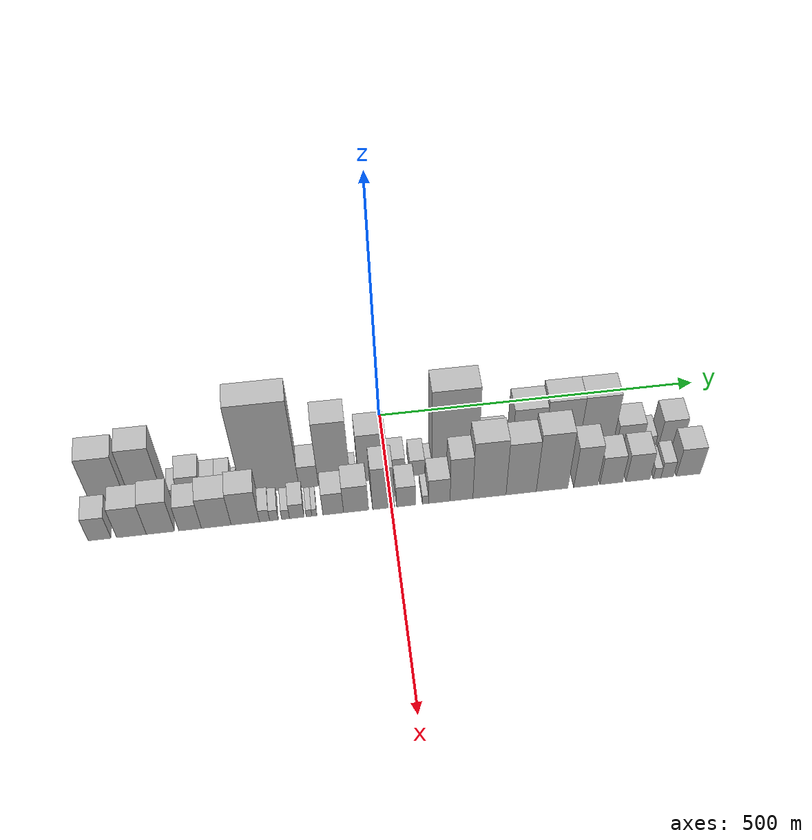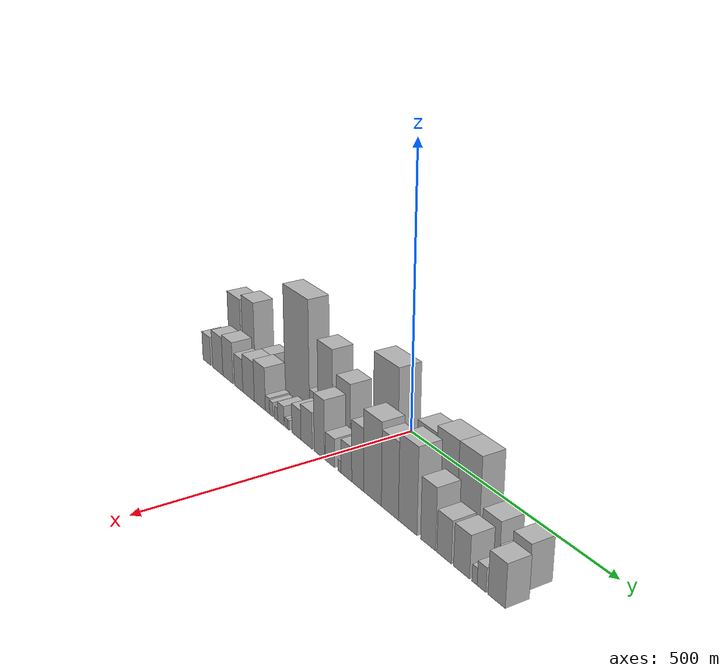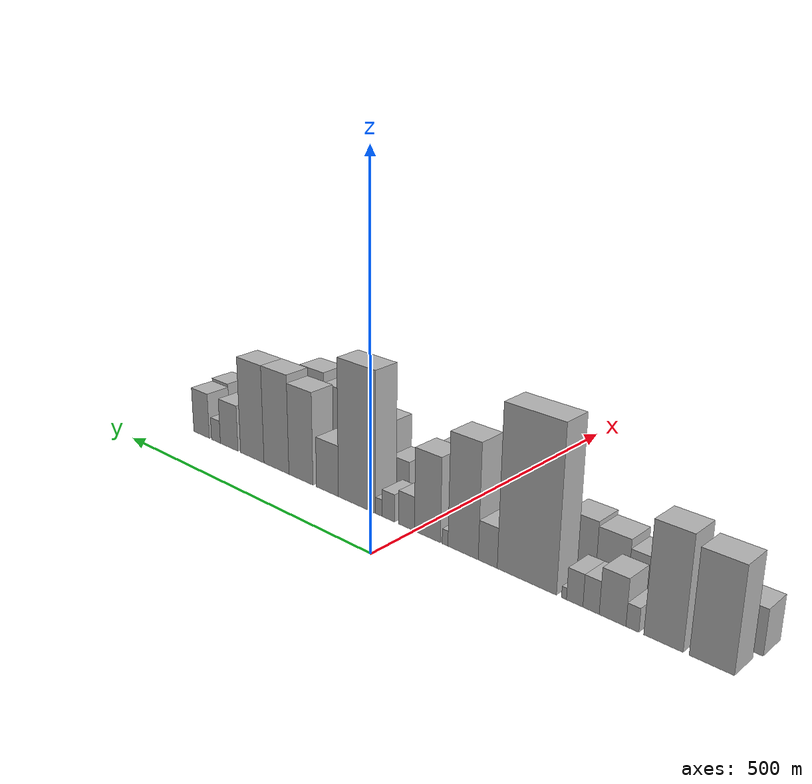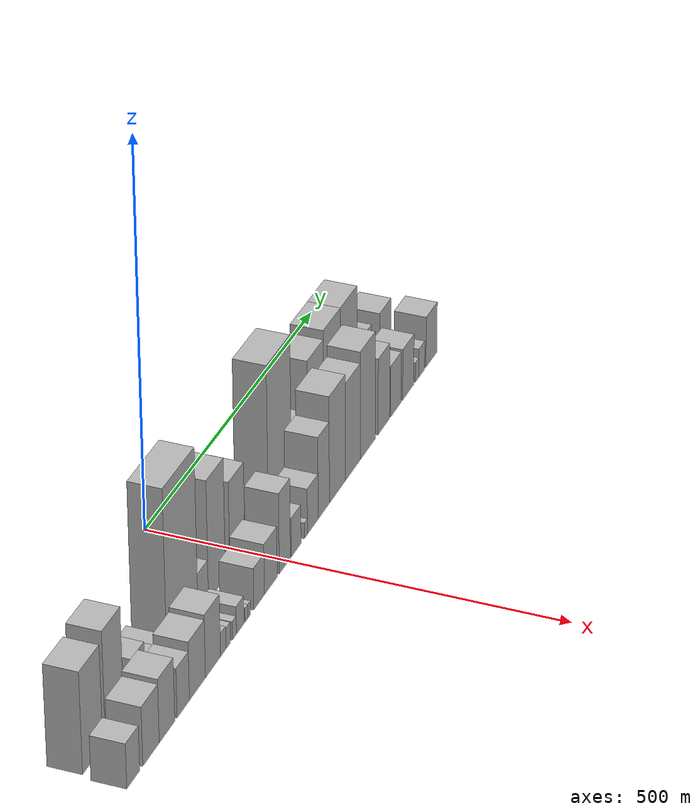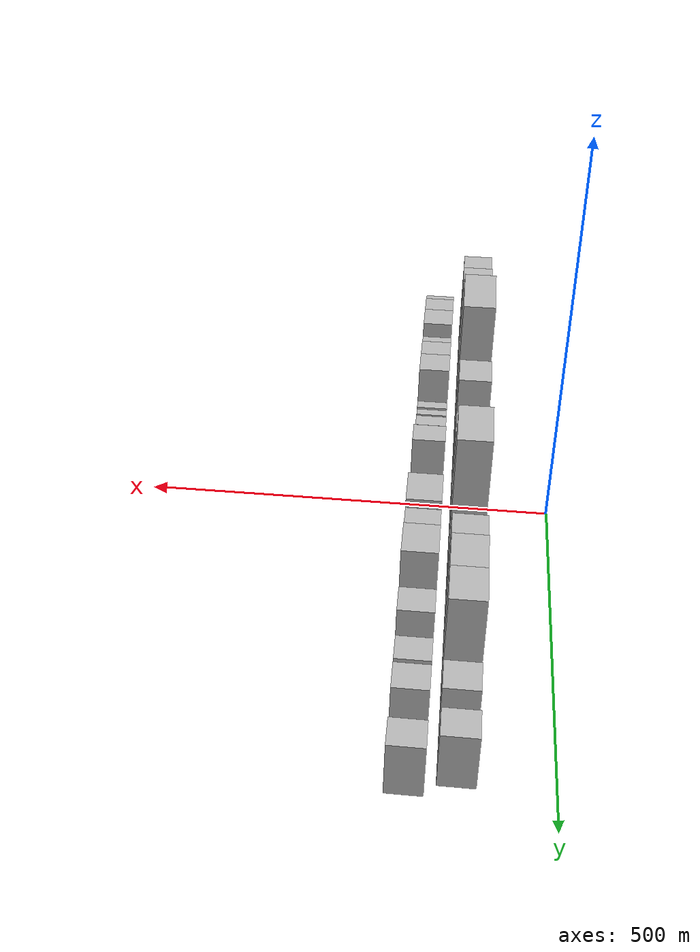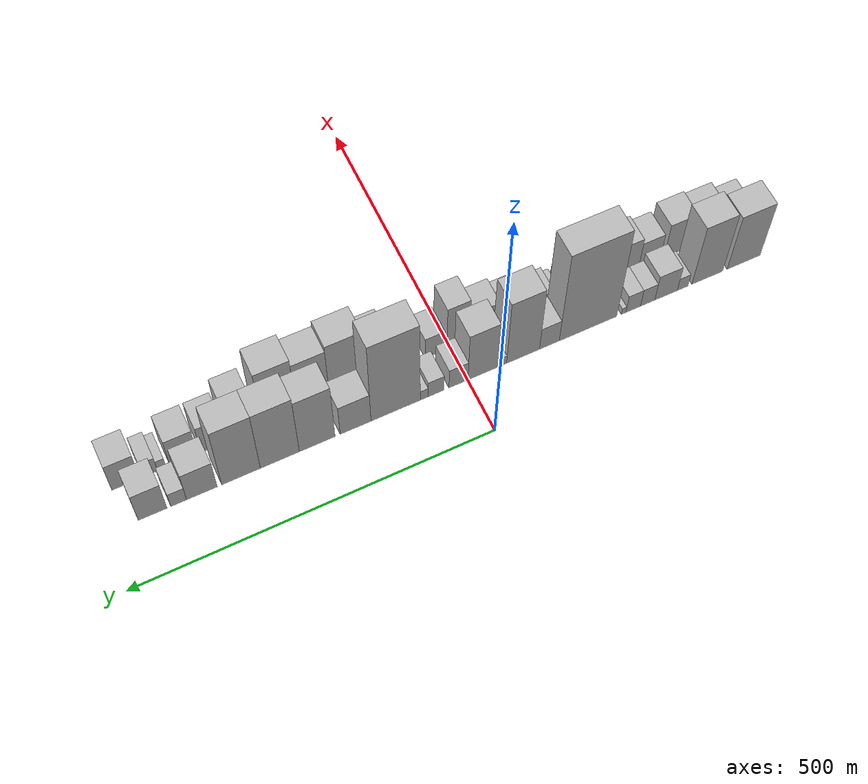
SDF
<sdf version="1.6">
 <world name="default">
  <scene>
   <sky><clouds><speed>12</speed></clouds></sky>
   <ambient>0.4 0.4 0.4 1</ambient>
   <background>0.7 0.7 0.7 1</background>
   <shadows>1</shadows>
  </scene>
  <gravity>0 0 -9.8066</gravity>
  <magnetic_field>6e-06 2.3e-05 -4.2e-05</magnetic_field>
  <physics default="0" name="default_physics" type="ode">
   <ode>
    <solver>
     <type>quick</type>
     <iters>10</iters>
     <sor>1.0</sor>
     <use_dynamic_moi_rescaling>0</use_dynamic_moi_rescaling>
    </solver>
    <constraints>
     <cfm>0</cfm>
     <erp>0.2</erp>
     <contact_max_correcting_vel>100</contact_max_correcting_vel>
     <contact_surface_layer>0.001</contact_surface_layer>
    </constraints>
   </ode>
   <max_step_size>0.004</max_step_size>
   <real_time_factor>1</real_time_factor>
   <real_time_update_rate>250</real_time_update_rate>
  </physics>
  <light name="sun" type="directional">
   <pose>0 0 10 0 0 0</pose>
   <diffuse>0.8 0.8 0.8 1</diffuse>
   <specular>0.2 0.2 0.2 1</specular>
   <attenuation>
    <range>1000</range>
    <constant>0.9</constant>
    <linear>0.01</linear>
    <quadratic>0.001</quadratic>
   </attenuation>
   <direction>-0.5 0.1 -0.9</direction>
  </light>
  <model name="building_1">
   <static>1</static>
   <pose>100.0000 -412.4454 0 0.000000 0.000000 0.000000</pose>
   <link name="link">
    <pose>0 0 64.50 0 0 0</pose>
    <collision name="collision"><geometry><box><size>40.0000 51.1092 129.0000</size></box></geometry></collision>
    <visual name="visual">
     <cast_shadows>0</cast_shadows>
     <geometry><box><size>40.0000 51.1092 129.0000</size></box></geometry>
     <material>
      <script>
       <uri>model://HANNAS_wall/materials/scripts</uri>
       <uri>model://HANNAS_wall/materials/textures</uri>
       <name>vrc/HANNAS_wall</name>
      </script>
     </material>
    </visual>
   </link>
  </model>
  <model name="building_2">
   <static>1</static>
   <pose>100.0000 -356.2468 0 0.000000 0.000000 0.000000</pose>
   <link name="link">
    <pose>0 0 70.50 0 0 0</pose>
    <collision name="collision"><geometry><box><size>40.0000 47.2879 141.0000</size></box></geometry></collision>
    <visual name="visual">
     <cast_shadows>0</cast_shadows>
     <geometry><box><size>40.0000 47.2879 141.0000</size></box></geometry>
     <material>
      <script>
       <uri>model://HANNAS_wall/materials/scripts</uri>
       <uri>model://HANNAS_wall/materials/textures</uri>
       <name>vrc/HANNAS_wall</name>
      </script>
     </material>
    </visual>
   </link>
  </model>
  <model name="building_3">
   <static>1</static>
   <pose>100.0000 -318.4985 0 0.000000 0.000000 0.000000</pose>
   <link name="link">
    <pose>0 0 15.00 0 0 0</pose>
    <collision name="collision"><geometry><box><size>40.0000 16.2087 30.0000</size></box></geometry></collision>
    <visual name="visual">
     <cast_shadows>0</cast_shadows>
     <geometry><box><size>40.0000 16.2087 30.0000</size></box></geometry>
     <material>
      <script>
       <uri>model://HANNAS_wall/materials/scripts</uri>
       <uri>model://HANNAS_wall/materials/textures</uri>
       <name>vrc/HANNAS_wall</name>
      </script>
     </material>
    </visual>
   </link>
  </model>
  <model name="building_4">
   <static>1</static>
   <pose>100.0000 -293.2531 0 0.000000 0.000000 0.000000</pose>
   <link name="link">
    <pose>0 0 30.00 0 0 0</pose>
    <collision name="collision"><geometry><box><size>40.0000 34.2823 60.0000</size></box></geometry></collision>
    <visual name="visual">
     <cast_shadows>0</cast_shadows>
     <geometry><box><size>40.0000 34.2823 60.0000</size></box></geometry>
     <material>
      <script>
       <uri>model://HANNAS_wall/materials/scripts</uri>
       <uri>model://HANNAS_wall/materials/textures</uri>
       <name>vrc/HANNAS_wall</name>
      </script>
     </material>
    </visual>
   </link>
  </model>
  <model name="building_5">
   <static>1</static>
   <pose>100.0000 -265.3528 0 0.000000 0.000000 0.000000</pose>
   <link name="link">
    <pose>0 0 21.00 0 0 0</pose>
    <collision name="collision"><geometry><box><size>40.0000 21.5183 42.0000</size></box></geometry></collision>
    <visual name="visual">
     <cast_shadows>0</cast_shadows>
     <geometry><box><size>40.0000 21.5183 42.0000</size></box></geometry>
     <material>
      <script>
       <uri>model://HANNAS_wall/materials/scripts</uri>
       <uri>model://HANNAS_wall/materials/textures</uri>
       <name>vrc/HANNAS_wall</name>
      </script>
     </material>
    </visual>
   </link>
  </model>
  <model name="building_6">
   <static>1</static>
   <pose>100.0000 -243.5358 0 0.000000 0.000000 0.000000</pose>
   <link name="link">
    <pose>0 0 21.00 0 0 0</pose>
    <collision name="collision"><geometry><box><size>40.0000 22.1157 42.0000</size></box></geometry></collision>
    <visual name="visual">
     <cast_shadows>0</cast_shadows>
     <geometry><box><size>40.0000 22.1157 42.0000</size></box></geometry>
     <material>
      <script>
       <uri>model://HANNAS_wall/materials/scripts</uri>
       <uri>model://HANNAS_wall/materials/textures</uri>
       <name>vrc/HANNAS_wall</name>
      </script>
     </material>
    </visual>
   </link>
  </model>
  <model name="building_7">
   <static>1</static>
   <pose>100.0000 -229.0889 0 0.000000 0.000000 0.000000</pose>
   <link name="link">
    <pose>0 0 7.50 0 0 0</pose>
    <collision name="collision"><geometry><box><size>40.0000 6.7782 15.0000</size></box></geometry></collision>
    <visual name="visual">
     <cast_shadows>0</cast_shadows>
     <geometry><box><size>40.0000 6.7782 15.0000</size></box></geometry>
     <material>
      <script>
       <uri>model://HANNAS_wall/materials/scripts</uri>
       <uri>model://HANNAS_wall/materials/textures</uri>
       <name>vrc/HANNAS_wall</name>
      </script>
     </material>
    </visual>
   </link>
  </model>
  <model name="building_8">
   <static>1</static>
   <pose>100.0000 -175.8983 0 0.000000 0.000000 0.000000</pose>
   <link name="link">
    <pose>0 0 108.00 0 0 0</pose>
    <collision name="collision"><geometry><box><size>40.0000 85.6029 216.0000</size></box></geometry></collision>
    <visual name="visual">
     <cast_shadows>0</cast_shadows>
     <geometry><box><size>40.0000 85.6029 216.0000</size></box></geometry>
     <material>
      <script>
       <uri>model://HANNAS_wall/materials/scripts</uri>
       <uri>model://HANNAS_wall/materials/textures</uri>
       <name>vrc/HANNAS_wall</name>
      </script>
     </material>
    </visual>
   </link>
  </model>
  <model name="building_9">
   <static>1</static>
   <pose>100.0000 -118.5695 0 0.000000 0.000000 0.000000</pose>
   <link name="link">
    <pose>0 0 27.00 0 0 0</pose>
    <collision name="collision"><geometry><box><size>40.0000 29.0548 54.0000</size></box></geometry></collision>
    <visual name="visual">
     <cast_shadows>0</cast_shadows>
     <geometry><box><size>40.0000 29.0548 54.0000</size></box></geometry>
     <material>
      <script>
       <uri>model://HANNAS_wall/materials/scripts</uri>
       <uri>model://HANNAS_wall/materials/textures</uri>
       <name>vrc/HANNAS_wall</name>
      </script>
     </material>
    </visual>
   </link>
  </model>
  <model name="building_10">
   <static>1</static>
   <pose>100.0000 -80.0002 0 0.000000 0.000000 0.000000</pose>
   <link name="link">
    <pose>0 0 78.00 0 0 0</pose>
    <collision name="collision"><geometry><box><size>40.0000 48.0838 156.0000</size></box></geometry></collision>
    <visual name="visual">
     <cast_shadows>0</cast_shadows>
     <geometry><box><size>40.0000 48.0838 156.0000</size></box></geometry>
     <material>
      <script>
       <uri>model://HANNAS_wall/materials/scripts</uri>
       <uri>model://HANNAS_wall/materials/textures</uri>
       <name>vrc/HANNAS_wall</name>
      </script>
     </material>
    </visual>
   </link>
  </model>
  <model name="building_11">
   <static>1</static>
   <pose>100.0000 -51.2306 0 0.000000 0.000000 0.000000</pose>
   <link name="link">
    <pose>0 0 10.50 0 0 0</pose>
    <collision name="collision"><geometry><box><size>40.0000 9.4553 21.0000</size></box></geometry></collision>
    <visual name="visual">
     <cast_shadows>0</cast_shadows>
     <geometry><box><size>40.0000 9.4553 21.0000</size></box></geometry>
     <material>
      <script>
       <uri>model://HANNAS_wall/materials/scripts</uri>
       <uri>model://HANNAS_wall/materials/textures</uri>
       <name>vrc/HANNAS_wall</name>
      </script>
     </material>
    </visual>
   </link>
  </model>
  <model name="building_12">
   <static>1</static>
   <pose>100.0000 -21.7732 0 0.000000 0.000000 0.000000</pose>
   <link name="link">
    <pose>0 0 58.50 0 0 0</pose>
    <collision name="collision"><geometry><box><size>40.0000 43.4596 117.0000</size></box></geometry></collision>
    <visual name="visual">
     <cast_shadows>0</cast_shadows>
     <geometry><box><size>40.0000 43.4596 117.0000</size></box></geometry>
     <material>
      <script>
       <uri>model://HANNAS_wall/materials/scripts</uri>
       <uri>model://HANNAS_wall/materials/textures</uri>
       <name>vrc/HANNAS_wall</name>
      </script>
     </material>
    </visual>
   </link>
  </model>
  <model name="building_13">
   <static>1</static>
   <pose>100.0000 13.6026 0 0.000000 0.000000 0.000000</pose>
   <link name="link">
    <pose>0 0 24.00 0 0 0</pose>
    <collision name="collision"><geometry><box><size>40.0000 27.2921 48.0000</size></box></geometry></collision>
    <visual name="visual">
     <cast_shadows>0</cast_shadows>
     <geometry><box><size>40.0000 27.2921 48.0000</size></box></geometry>
     <material>
      <script>
       <uri>model://HANNAS_wall/materials/scripts</uri>
       <uri>model://HANNAS_wall/materials/textures</uri>
       <name>vrc/HANNAS_wall</name>
      </script>
     </material>
    </visual>
   </link>
  </model>
  <model name="building_14">
   <static>1</static>
   <pose>100.0000 45.5279 0 0.000000 0.000000 0.000000</pose>
   <link name="link">
    <pose>0 0 19.50 0 0 0</pose>
    <collision name="collision"><geometry><box><size>40.0000 22.5586 39.0000</size></box></geometry></collision>
    <visual name="visual">
     <cast_shadows>0</cast_shadows>
     <geometry><box><size>40.0000 22.5586 39.0000</size></box></geometry>
     <material>
      <script>
       <uri>model://HANNAS_wall/materials/scripts</uri>
       <uri>model://HANNAS_wall/materials/textures</uri>
       <name>vrc/HANNAS_wall</name>
      </script>
     </material>
    </visual>
   </link>
  </model>
  <model name="building_15">
   <static>1</static>
   <pose>100.0000 62.4780 0 0.000000 0.000000 0.000000</pose>
   <link name="link">
    <pose>0 0 12.00 0 0 0</pose>
    <collision name="collision"><geometry><box><size>40.0000 11.3417 24.0000</size></box></geometry></collision>
    <visual name="visual">
     <cast_shadows>0</cast_shadows>
     <geometry><box><size>40.0000 11.3417 24.0000</size></box></geometry>
     <material>
      <script>
       <uri>model://HANNAS_wall/materials/scripts</uri>
       <uri>model://HANNAS_wall/materials/textures</uri>
       <name>vrc/HANNAS_wall</name>
      </script>
     </material>
    </visual>
   </link>
  </model>
  <model name="building_16">
   <static>1</static>
   <pose>100.0000 102.9196 0 0.000000 0.000000 0.000000</pose>
   <link name="link">
    <pose>0 0 100.50 0 0 0</pose>
    <collision name="collision"><geometry><box><size>40.0000 69.5414 201.0000</size></box></geometry></collision>
    <visual name="visual">
     <cast_shadows>0</cast_shadows>
     <geometry><box><size>40.0000 69.5414 201.0000</size></box></geometry>
     <material>
      <script>
       <uri>model://HANNAS_wall/materials/scripts</uri>
       <uri>model://HANNAS_wall/materials/textures</uri>
       <name>vrc/HANNAS_wall</name>
      </script>
     </material>
    </visual>
   </link>
  </model>
  <model name="building_17">
   <static>1</static>
   <pose>100.0000 159.2375 0 0.000000 0.000000 0.000000</pose>
   <link name="link">
    <pose>0 0 37.50 0 0 0</pose>
    <collision name="collision"><geometry><box><size>40.0000 43.0945 75.0000</size></box></geometry></collision>
    <visual name="visual">
     <cast_shadows>0</cast_shadows>
     <geometry><box><size>40.0000 43.0945 75.0000</size></box></geometry>
     <material>
      <script>
       <uri>model://HANNAS_wall/materials/scripts</uri>
       <uri>model://HANNAS_wall/materials/textures</uri>
       <name>vrc/HANNAS_wall</name>
      </script>
     </material>
    </visual>
   </link>
  </model>
  <model name="building_18">
   <static>1</static>
   <pose>100.0000 212.5065 0 0.000000 0.000000 0.000000</pose>
   <link name="link">
    <pose>0 0 69.00 0 0 0</pose>
    <collision name="collision"><geometry><box><size>40.0000 49.4435 138.0000</size></box></geometry></collision>
    <visual name="visual">
     <cast_shadows>0</cast_shadows>
     <geometry><box><size>40.0000 49.4435 138.0000</size></box></geometry>
     <material>
      <script>
       <uri>model://HANNAS_wall/materials/scripts</uri>
       <uri>model://HANNAS_wall/materials/textures</uri>
       <name>vrc/HANNAS_wall</name>
      </script>
     </material>
    </visual>
   </link>
  </model>
  <model name="building_19">
   <static>1</static>
   <pose>100.0000 263.9309 0 0.000000 0.000000 0.000000</pose>
   <link name="link">
    <pose>0 0 75.00 0 0 0</pose>
    <collision name="collision"><geometry><box><size>40.0000 53.4052 150.0000</size></box></geometry></collision>
    <visual name="visual">
     <cast_shadows>0</cast_shadows>
     <geometry><box><size>40.0000 53.4052 150.0000</size></box></geometry>
     <material>
      <script>
       <uri>model://HANNAS_wall/materials/scripts</uri>
       <uri>model://HANNAS_wall/materials/textures</uri>
       <name>vrc/HANNAS_wall</name>
      </script>
     </material>
    </visual>
   </link>
  </model>
  <model name="building_20">
   <static>1</static>
   <pose>100.0000 316.8447 0 0.000000 0.000000 0.000000</pose>
   <link name="link">
    <pose>0 0 75.00 0 0 0</pose>
    <collision name="collision"><geometry><box><size>40.0000 52.4226 150.0000</size></box></geometry></collision>
    <visual name="visual">
     <cast_shadows>0</cast_shadows>
     <geometry><box><size>40.0000 52.4226 150.0000</size></box></geometry>
     <material>
      <script>
       <uri>model://HANNAS_wall/materials/scripts</uri>
       <uri>model://HANNAS_wall/materials/textures</uri>
       <name>vrc/HANNAS_wall</name>
      </script>
     </material>
    </visual>
   </link>
  </model>
  <model name="building_21">
   <static>1</static>
   <pose>100.0000 369.5869 0 0.000000 0.000000 0.000000</pose>
   <link name="link">
    <pose>0 0 36.00 0 0 0</pose>
    <collision name="collision"><geometry><box><size>40.0000 41.0618 72.0000</size></box></geometry></collision>
    <visual name="visual">
     <cast_shadows>0</cast_shadows>
     <geometry><box><size>40.0000 41.0618 72.0000</size></box></geometry>
     <material>
      <script>
       <uri>model://HANNAS_wall/materials/scripts</uri>
       <uri>model://HANNAS_wall/materials/textures</uri>
       <name>vrc/HANNAS_wall</name>
      </script>
     </material>
    </visual>
   </link>
  </model>
  <model name="building_22">
   <static>1</static>
   <pose>100.0000 400.6981 0 0.000000 0.000000 0.000000</pose>
   <link name="link">
    <pose>0 0 18.00 0 0 0</pose>
    <collision name="collision"><geometry><box><size>40.0000 21.1606 36.0000</size></box></geometry></collision>
    <visual name="visual">
     <cast_shadows>0</cast_shadows>
     <geometry><box><size>40.0000 21.1606 36.0000</size></box></geometry>
     <material>
      <script>
       <uri>model://HANNAS_wall/materials/scripts</uri>
       <uri>model://HANNAS_wall/materials/textures</uri>
       <name>vrc/HANNAS_wall</name>
      </script>
     </material>
    </visual>
   </link>
  </model>
  <model name="building_23">
   <static>1</static>
   <pose>100.0000 435.3288 0 0.000000 0.000000 0.000000</pose>
   <link name="link">
    <pose>0 0 36.00 0 0 0</pose>
    <collision name="collision"><geometry><box><size>40.0000 38.1008 72.0000</size></box></geometry></collision>
    <visual name="visual">
     <cast_shadows>0</cast_shadows>
     <geometry><box><size>40.0000 38.1008 72.0000</size></box></geometry>
     <material>
      <script>
       <uri>model://HANNAS_wall/materials/scripts</uri>
       <uri>model://HANNAS_wall/materials/textures</uri>
       <name>vrc/HANNAS_wall</name>
      </script>
     </material>
    </visual>
   </link>
  </model>
  <model name="building_24">
   <static>1</static>
   <pose>152.0000 -427.4469 0 0.000000 0.000000 0.000000</pose>
   <link name="link">
    <pose>0 0 28.50 0 0 0</pose>
    <collision name="collision"><geometry><box><size>40.0000 33.1061 57.0000</size></box></geometry></collision>
    <visual name="visual">
     <cast_shadows>0</cast_shadows>
     <geometry><box><size>40.0000 33.1061 57.0000</size></box></geometry>
     <material>
      <script>
       <uri>model://HANNAS_wall/materials/scripts</uri>
       <uri>model://HANNAS_wall/materials/textures</uri>
       <name>vrc/HANNAS_wall</name>
      </script>
     </material>
    </visual>
   </link>
  </model>
  <model name="building_25">
   <static>1</static>
   <pose>152.0000 -381.4423 0 0.000000 0.000000 0.000000</pose>
   <link name="link">
    <pose>0 0 37.50 0 0 0</pose>
    <collision name="collision"><geometry><box><size>40.0000 42.9032 75.0000</size></box></geometry></collision>
    <visual name="visual">
     <cast_shadows>0</cast_shadows>
     <geometry><box><size>40.0000 42.9032 75.0000</size></box></geometry>
     <material>
      <script>
       <uri>model://HANNAS_wall/materials/scripts</uri>
       <uri>model://HANNAS_wall/materials/textures</uri>
       <name>vrc/HANNAS_wall</name>
      </script>
     </material>
    </visual>
   </link>
  </model>
  <model name="building_26">
   <static>1</static>
   <pose>152.0000 -339.4748 0 0.000000 0.000000 0.000000</pose>
   <link name="link">
    <pose>0 0 40.50 0 0 0</pose>
    <collision name="collision"><geometry><box><size>40.0000 41.0317 81.0000</size></box></geometry></collision>
    <visual name="visual">
     <cast_shadows>0</cast_shadows>
     <geometry><box><size>40.0000 41.0317 81.0000</size></box></geometry>
     <material>
      <script>
       <uri>model://HANNAS_wall/materials/scripts</uri>
       <uri>model://HANNAS_wall/materials/textures</uri>
       <name>vrc/HANNAS_wall</name>
      </script>
     </material>
    </visual>
   </link>
  </model>
  <model name="building_27">
   <static>1</static>
   <pose>152.0000 -296.4345 0 0.000000 0.000000 0.000000</pose>
   <link name="link">
    <pose>0 0 31.50 0 0 0</pose>
    <collision name="collision"><geometry><box><size>40.0000 33.0490 63.0000</size></box></geometry></collision>
    <visual name="visual">
     <cast_shadows>0</cast_shadows>
     <geometry><box><size>40.0000 33.0490 63.0000</size></box></geometry>
     <material>
      <script>
       <uri>model://HANNAS_wall/materials/scripts</uri>
       <uri>model://HANNAS_wall/materials/textures</uri>
       <name>vrc/HANNAS_wall</name>
      </script>
     </material>
    </visual>
   </link>
  </model>
  <model name="building_28">
   <static>1</static>
   <pose>152.0000 -258.1805 0 0.000000 0.000000 0.000000</pose>
   <link name="link">
    <pose>0 0 37.50 0 0 0</pose>
    <collision name="collision"><geometry><box><size>40.0000 43.4590 75.0000</size></box></geometry></collision>
    <visual name="visual">
     <cast_shadows>0</cast_shadows>
     <geometry><box><size>40.0000 43.4590 75.0000</size></box></geometry>
     <material>
      <script>
       <uri>model://HANNAS_wall/materials/scripts</uri>
       <uri>model://HANNAS_wall/materials/textures</uri>
       <name>vrc/HANNAS_wall</name>
      </script>
     </material>
    </visual>
   </link>
  </model>
  <model name="building_29">
   <static>1</static>
   <pose>152.0000 -215.7750 0 0.000000 0.000000 0.000000</pose>
   <link name="link">
    <pose>0 0 40.50 0 0 0</pose>
    <collision name="collision"><geometry><box><size>40.0000 41.3522 81.0000</size></box></geometry></collision>
    <visual name="visual">
     <cast_shadows>0</cast_shadows>
     <geometry><box><size>40.0000 41.3522 81.0000</size></box></geometry>
     <material>
      <script>
       <uri>model://HANNAS_wall/materials/scripts</uri>
       <uri>model://HANNAS_wall/materials/textures</uri>
       <name>vrc/HANNAS_wall</name>
      </script>
     </material>
    </visual>
   </link>
  </model>
  <model name="building_30">
   <static>1</static>
   <pose>152.0000 -187.5196 0 0.000000 0.000000 0.000000</pose>
   <link name="link">
    <pose>0 0 15.00 0 0 0</pose>
    <collision name="collision"><geometry><box><size>40.0000 15.1585 30.0000</size></box></geometry></collision>
    <visual name="visual">
     <cast_shadows>0</cast_shadows>
     <geometry><box><size>40.0000 15.1585 30.0000</size></box></geometry>
     <material>
      <script>
       <uri>model://HANNAS_wall/materials/scripts</uri>
       <uri>model://HANNAS_wall/materials/textures</uri>
       <name>vrc/HANNAS_wall</name>
      </script>
     </material>
    </visual>
   </link>
  </model>
  <model name="building_31">
   <static>1</static>
   <pose>152.0000 -173.6112 0 0.000000 0.000000 0.000000</pose>
   <link name="link">
    <pose>0 0 13.50 0 0 0</pose>
    <collision name="collision"><geometry><box><size>40.0000 12.6585 27.0000</size></box></geometry></collision>
    <visual name="visual">
     <cast_shadows>0</cast_shadows>
     <geometry><box><size>40.0000 12.6585 27.0000</size></box></geometry>
     <material>
      <script>
       <uri>model://HANNAS_wall/materials/scripts</uri>
       <uri>model://HANNAS_wall/materials/textures</uri>
       <name>vrc/HANNAS_wall</name>
      </script>
     </material>
    </visual>
   </link>
  </model>
  <model name="building_32">
   <static>1</static>
   <pose>152.0000 -156.4953 0 0.000000 0.000000 0.000000</pose>
   <link name="link">
    <pose>0 0 12.00 0 0 0</pose>
    <collision name="collision"><geometry><box><size>40.0000 11.5733 24.0000</size></box></geometry></collision>
    <visual name="visual">
     <cast_shadows>0</cast_shadows>
     <geometry><box><size>40.0000 11.5733 24.0000</size></box></geometry>
     <material>
      <script>
       <uri>model://HANNAS_wall/materials/scripts</uri>
       <uri>model://HANNAS_wall/materials/textures</uri>
       <name>vrc/HANNAS_wall</name>
      </script>
     </material>
    </visual>
   </link>
  </model>
  <model name="building_33">
   <static>1</static>
   <pose>152.0000 -139.9352 0 0.000000 0.000000 0.000000</pose>
   <link name="link">
    <pose>0 0 18.00 0 0 0</pose>
    <collision name="collision"><geometry><box><size>40.0000 21.5468 36.0000</size></box></geometry></collision>
    <visual name="visual">
     <cast_shadows>0</cast_shadows>
     <geometry><box><size>40.0000 21.5468 36.0000</size></box></geometry>
     <material>
      <script>
       <uri>model://HANNAS_wall/materials/scripts</uri>
       <uri>model://HANNAS_wall/materials/textures</uri>
       <name>vrc/HANNAS_wall</name>
      </script>
     </material>
    </visual>
   </link>
  </model>
  <model name="building_34">
   <static>1</static>
   <pose>152.0000 -121.9269 0 0.000000 0.000000 0.000000</pose>
   <link name="link">
    <pose>0 0 9.00 0 0 0</pose>
    <collision name="collision"><geometry><box><size>40.0000 8.4697 18.0000</size></box></geometry></collision>
    <visual name="visual">
     <cast_shadows>0</cast_shadows>
     <geometry><box><size>40.0000 8.4697 18.0000</size></box></geometry>
     <material>
      <script>
       <uri>model://HANNAS_wall/materials/scripts</uri>
       <uri>model://HANNAS_wall/materials/textures</uri>
       <name>vrc/HANNAS_wall</name>
      </script>
     </material>
    </visual>
   </link>
  </model>
  <model name="building_35">
   <static>1</static>
   <pose>152.0000 -114.0219 0 0.000000 0.000000 0.000000</pose>
   <link name="link">
    <pose>0 0 9.00 0 0 0</pose>
    <collision name="collision"><geometry><box><size>40.0000 7.3404 18.0000</size></box></geometry></collision>
    <visual name="visual">
     <cast_shadows>0</cast_shadows>
     <geometry><box><size>40.0000 7.3404 18.0000</size></box></geometry>
     <material>
      <script>
       <uri>model://HANNAS_wall/materials/scripts</uri>
       <uri>model://HANNAS_wall/materials/textures</uri>
       <name>vrc/HANNAS_wall</name>
      </script>
     </material>
    </visual>
   </link>
  </model>
  <model name="building_36">
   <static>1</static>
   <pose>152.0000 -86.0869 0 0.000000 0.000000 0.000000</pose>
   <link name="link">
    <pose>0 0 27.00 0 0 0</pose>
    <collision name="collision"><geometry><box><size>40.0000 30.5296 54.0000</size></box></geometry></collision>
    <visual name="visual">
     <cast_shadows>0</cast_shadows>
     <geometry><box><size>40.0000 30.5296 54.0000</size></box></geometry>
     <material>
      <script>
       <uri>model://HANNAS_wall/materials/scripts</uri>
       <uri>model://HANNAS_wall/materials/textures</uri>
       <name>vrc/HANNAS_wall</name>
      </script>
     </material>
    </visual>
   </link>
  </model>
  <model name="building_37">
   <static>1</static>
   <pose>152.0000 -52.2406 0 0.000000 0.000000 0.000000</pose>
   <link name="link">
    <pose>0 0 33.00 0 0 0</pose>
    <collision name="collision"><geometry><box><size>40.0000 37.1631 66.0000</size></box></geometry></collision>
    <visual name="visual">
     <cast_shadows>0</cast_shadows>
     <geometry><box><size>40.0000 37.1631 66.0000</size></box></geometry>
     <material>
      <script>
       <uri>model://HANNAS_wall/materials/scripts</uri>
       <uri>model://HANNAS_wall/materials/textures</uri>
       <name>vrc/HANNAS_wall</name>
      </script>
     </material>
    </visual>
   </link>
  </model>
  <model name="building_38">
   <static>1</static>
   <pose>152.0000 -11.2561 0 0.000000 0.000000 0.000000</pose>
   <link name="link">
    <pose>0 0 52.50 0 0 0</pose>
    <collision name="collision"><geometry><box><size>40.0000 32.8060 105.0000</size></box></geometry></collision>
    <visual name="visual">
     <cast_shadows>0</cast_shadows>
     <geometry><box><size>40.0000 32.8060 105.0000</size></box></geometry>
     <material>
      <script>
       <uri>model://HANNAS_wall/materials/scripts</uri>
       <uri>model://HANNAS_wall/materials/textures</uri>
       <name>vrc/HANNAS_wall</name>
      </script>
     </material>
    </visual>
   </link>
  </model>
  <model name="building_39">
   <static>1</static>
   <pose>152.0000 22.3884 0 0.000000 0.000000 0.000000</pose>
   <link name="link">
    <pose>0 0 25.50 0 0 0</pose>
    <collision name="collision"><geometry><box><size>40.0000 28.4828 51.0000</size></box></geometry></collision>
    <visual name="visual">
     <cast_shadows>0</cast_shadows>
     <geometry><box><size>40.0000 28.4828 51.0000</size></box></geometry>
     <material>
      <script>
       <uri>model://HANNAS_wall/materials/scripts</uri>
       <uri>model://HANNAS_wall/materials/textures</uri>
       <name>vrc/HANNAS_wall</name>
      </script>
     </material>
    </visual>
   </link>
  </model>
  <model name="building_40">
   <static>1</static>
   <pose>152.0000 51.1668 0 0.000000 0.000000 0.000000</pose>
   <link name="link">
    <pose>0 0 10.50 0 0 0</pose>
    <collision name="collision"><geometry><box><size>40.0000 9.0741 21.0000</size></box></geometry></collision>
    <visual name="visual">
     <cast_shadows>0</cast_shadows>
     <geometry><box><size>40.0000 9.0741 21.0000</size></box></geometry>
     <material>
      <script>
       <uri>model://HANNAS_wall/materials/scripts</uri>
       <uri>model://HANNAS_wall/materials/textures</uri>
       <name>vrc/HANNAS_wall</name>
      </script>
     </material>
    </visual>
   </link>
  </model>
  <model name="building_41">
   <static>1</static>
   <pose>152.0000 71.9464 0 0.000000 0.000000 0.000000</pose>
   <link name="link">
    <pose>0 0 30.00 0 0 0</pose>
    <collision name="collision"><geometry><box><size>40.0000 32.4851 60.0000</size></box></geometry></collision>
    <visual name="visual">
     <cast_shadows>0</cast_shadows>
     <geometry><box><size>40.0000 32.4851 60.0000</size></box></geometry>
     <material>
      <script>
       <uri>model://HANNAS_wall/materials/scripts</uri>
       <uri>model://HANNAS_wall/materials/textures</uri>
       <name>vrc/HANNAS_wall</name>
      </script>
     </material>
    </visual>
   </link>
  </model>
  <model name="building_42">
   <static>1</static>
   <pose>152.0000 105.2970 0 0.000000 0.000000 0.000000</pose>
   <link name="link">
    <pose>0 0 54.00 0 0 0</pose>
    <collision name="collision"><geometry><box><size>40.0000 34.2162 108.0000</size></box></geometry></collision>
    <visual name="visual">
     <cast_shadows>0</cast_shadows>
     <geometry><box><size>40.0000 34.2162 108.0000</size></box></geometry>
     <material>
      <script>
       <uri>model://HANNAS_wall/materials/scripts</uri>
       <uri>model://HANNAS_wall/materials/textures</uri>
       <name>vrc/HANNAS_wall</name>
      </script>
     </material>
    </visual>
   </link>
  </model>
  <model name="building_43">
   <static>1</static>
   <pose>152.0000 147.3764 0 0.000000 0.000000 0.000000</pose>
   <link name="link">
    <pose>0 0 70.50 0 0 0</pose>
    <collision name="collision"><geometry><box><size>40.0000 49.9427 141.0000</size></box></geometry></collision>
    <visual name="visual">
     <cast_shadows>0</cast_shadows>
     <geometry><box><size>40.0000 49.9427 141.0000</size></box></geometry>
     <material>
      <script>
       <uri>model://HANNAS_wall/materials/scripts</uri>
       <uri>model://HANNAS_wall/materials/textures</uri>
       <name>vrc/HANNAS_wall</name>
      </script>
     </material>
    </visual>
   </link>
  </model>
  <model name="building_44">
   <static>1</static>
   <pose>152.0000 195.2873 0 0.000000 0.000000 0.000000</pose>
   <link name="link">
    <pose>0 0 64.50 0 0 0</pose>
    <collision name="collision"><geometry><box><size>40.0000 45.8791 129.0000</size></box></geometry></collision>
    <visual name="visual">
     <cast_shadows>0</cast_shadows>
     <geometry><box><size>40.0000 45.8791 129.0000</size></box></geometry>
     <material>
      <script>
       <uri>model://HANNAS_wall/materials/scripts</uri>
       <uri>model://HANNAS_wall/materials/textures</uri>
       <name>vrc/HANNAS_wall</name>
      </script>
     </material>
    </visual>
   </link>
  </model>
  <model name="building_45">
   <static>1</static>
   <pose>152.0000 242.2739 0 0.000000 0.000000 0.000000</pose>
   <link name="link">
    <pose>0 0 72.00 0 0 0</pose>
    <collision name="collision"><geometry><box><size>40.0000 48.0941 144.0000</size></box></geometry></collision>
    <visual name="visual">
     <cast_shadows>0</cast_shadows>
     <geometry><box><size>40.0000 48.0941 144.0000</size></box></geometry>
     <material>
      <script>
       <uri>model://HANNAS_wall/materials/scripts</uri>
       <uri>model://HANNAS_wall/materials/textures</uri>
       <name>vrc/HANNAS_wall</name>
      </script>
     </material>
    </visual>
   </link>
  </model>
  <model name="building_46">
   <static>1</static>
   <pose>152.0000 293.8321 0 0.000000 0.000000 0.000000</pose>
   <link name="link">
    <pose>0 0 51.00 0 0 0</pose>
    <collision name="collision"><geometry><box><size>40.0000 37.0223 102.0000</size></box></geometry></collision>
    <visual name="visual">
     <cast_shadows>0</cast_shadows>
     <geometry><box><size>40.0000 37.0223 102.0000</size></box></geometry>
     <material>
      <script>
       <uri>model://HANNAS_wall/materials/scripts</uri>
       <uri>model://HANNAS_wall/materials/textures</uri>
       <name>vrc/HANNAS_wall</name>
      </script>
     </material>
    </visual>
   </link>
  </model>
  <model name="building_47">
   <static>1</static>
   <pose>152.0000 332.7594 0 0.000000 0.000000 0.000000</pose>
   <link name="link">
    <pose>0 0 34.50 0 0 0</pose>
    <collision name="collision"><geometry><box><size>40.0000 34.8324 69.0000</size></box></geometry></collision>
    <visual name="visual">
     <cast_shadows>0</cast_shadows>
     <geometry><box><size>40.0000 34.8324 69.0000</size></box></geometry>
     <material>
      <script>
       <uri>model://HANNAS_wall/materials/scripts</uri>
       <uri>model://HANNAS_wall/materials/textures</uri>
       <name>vrc/HANNAS_wall</name>
      </script>
     </material>
    </visual>
   </link>
  </model>
  <model name="building_48">
   <static>1</static>
   <pose>152.0000 373.6754 0 0.000000 0.000000 0.000000</pose>
   <link name="link">
    <pose>0 0 34.50 0 0 0</pose>
    <collision name="collision"><geometry><box><size>40.0000 36.9996 69.0000</size></box></geometry></collision>
    <visual name="visual">
     <cast_shadows>0</cast_shadows>
     <geometry><box><size>40.0000 36.9996 69.0000</size></box></geometry>
     <material>
      <script>
       <uri>model://HANNAS_wall/materials/scripts</uri>
       <uri>model://HANNAS_wall/materials/textures</uri>
       <name>vrc/HANNAS_wall</name>
      </script>
     </material>
    </visual>
   </link>
  </model>
  <model name="building_49">
   <static>1</static>
   <pose>152.0000 403.0251 0 0.000000 0.000000 0.000000</pose>
   <link name="link">
    <pose>0 0 13.50 0 0 0</pose>
    <collision name="collision"><geometry><box><size>40.0000 11.6999 27.0000</size></box></geometry></collision>
    <visual name="visual">
     <cast_shadows>0</cast_shadows>
     <geometry><box><size>40.0000 11.6999 27.0000</size></box></geometry>
     <material>
      <script>
       <uri>model://HANNAS_wall/materials/scripts</uri>
       <uri>model://HANNAS_wall/materials/textures</uri>
       <name>vrc/HANNAS_wall</name>
      </script>
     </material>
    </visual>
   </link>
  </model>
  <model name="building_50">
   <static>1</static>
   <pose>152.0000 418.7335 0 0.000000 0.000000 0.000000</pose>
   <link name="link">
    <pose>0 0 19.50 0 0 0</pose>
    <collision name="collision"><geometry><box><size>40.0000 19.7170 39.0000</size></box></geometry></collision>
    <visual name="visual">
     <cast_shadows>0</cast_shadows>
     <geometry><box><size>40.0000 19.7170 39.0000</size></box></geometry>
     <material>
      <script>
       <uri>model://HANNAS_wall/materials/scripts</uri>
       <uri>model://HANNAS_wall/materials/textures</uri>
       <name>vrc/HANNAS_wall</name>
      </script>
     </material>
    </visual>
   </link>
  </model>
  <model name="building_51">
   <static>1</static>
   <pose>152.0000 451.2401 0 0.000000 0.000000 0.000000</pose>
   <link name="link">
    <pose>0 0 34.50 0 0 0</pose>
    <collision name="collision"><geometry><box><size>40.0000 37.2961 69.0000</size></box></geometry></collision>
    <visual name="visual">
     <cast_shadows>0</cast_shadows>
     <geometry><box><size>40.0000 37.2961 69.0000</size></box></geometry>
     <material>
      <script>
       <uri>model://HANNAS_wall/materials/scripts</uri>
       <uri>model://HANNAS_wall/materials/textures</uri>
       <name>vrc/HANNAS_wall</name>
      </script>
     </material>
    </visual>
   </link>
  </model>
 </world>
</sdf>
